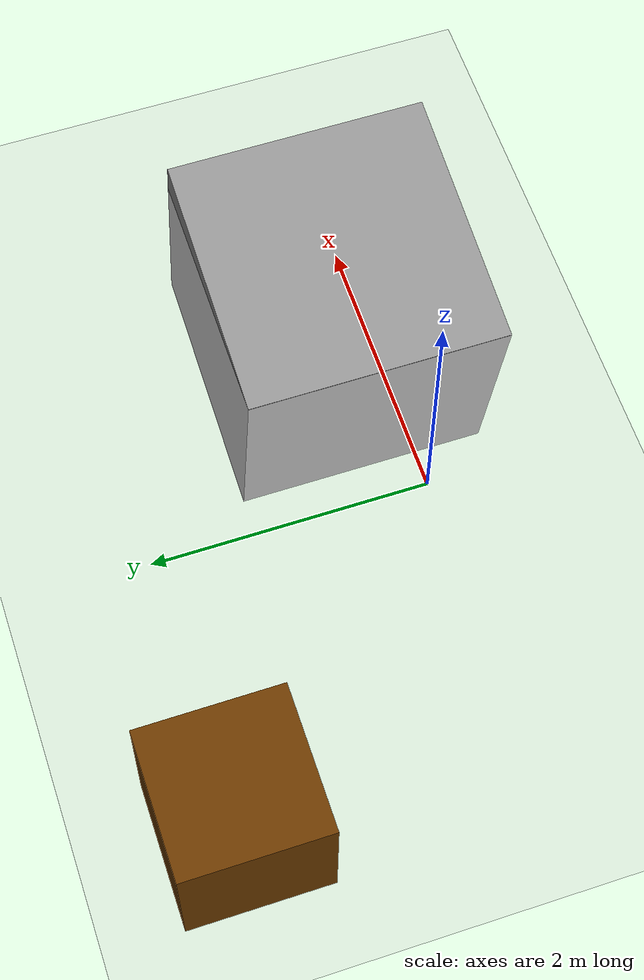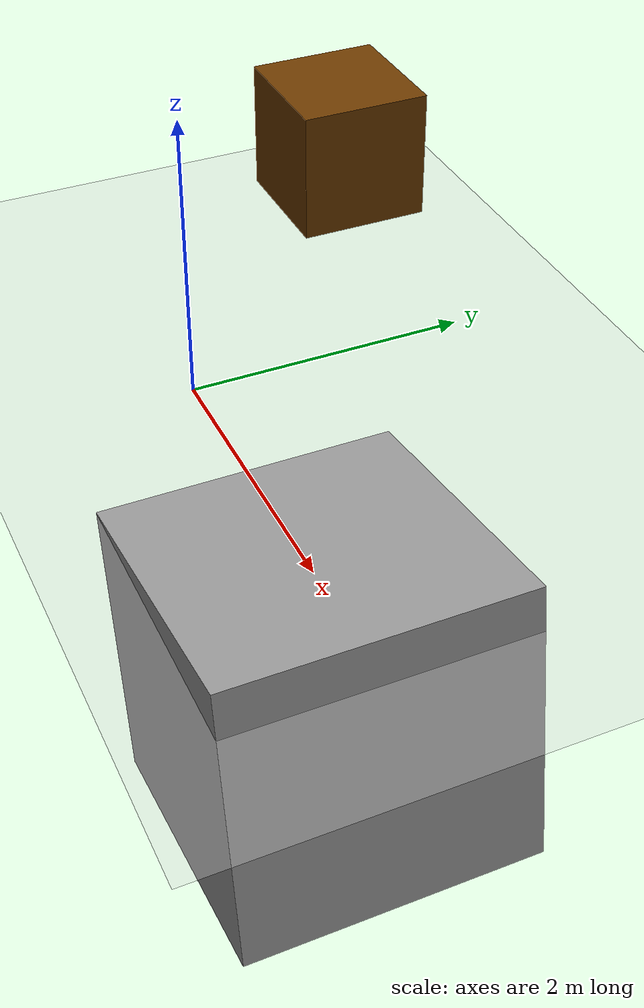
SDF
<sdf version="1.7">
 <world name="default">
  <physics type="ode">
   <max_step_size>0.0002</max_step_size>
   <real_time_factor>1</real_time_factor>
   <real_time_update_rate>5000</real_time_update_rate>
   <ode>
    <solver>
     <type>quick</type>
     <iters>50</iters>
     <sor>1.3</sor>
     <use_dynamic_moi_rescaling>0</use_dynamic_moi_rescaling>
    </solver>
    <constraints>
     <cfm>0</cfm>
     <erp>0.2</erp>
     <contact_max_correcting_vel>10</contact_max_correcting_vel>
     <contact_surface_layer>0.001</contact_surface_layer>
    </constraints>
   </ode>
  </physics>
  <scene>
   <sky><clouds><speed>12</speed></clouds></sky>
   <ambient>0.4 0.4 0.4 1</ambient>
   <background>0.7 0.7 0.7 1</background>
   <shadows>1</shadows>
  </scene>
  <light name="sun" type="directional">
   <pose>0 0 10 0 -0 0</pose>
   <diffuse>0.8 0.8 0.8 1</diffuse>
   <specular>0.2 0.2 0.2 1</specular>
   <attenuation>
    <range>1000</range>
    <constant>0.9</constant>
    <linear>0.01</linear>
    <quadratic>0.001</quadratic>
   </attenuation>
   <direction>-0.5 0.1 -0.9</direction>
   <spot><inner_angle>0</inner_angle><outer_angle>0</outer_angle><falloff>0</falloff></spot>
  </light>
  <model name="ground_plane">
   <static>1</static>
   <link name="link">
    <collision name="collision">
     <geometry><plane><normal>0 0 1</normal><size>100 100</size></plane></geometry>
     <surface>
      <contact><collide_bitmask>65535</collide_bitmask></contact>
      <friction><ode><mu>100</mu><mu2>50</mu2></ode></friction>
     </surface>
    </collision>
    <visual name="visual">
     <cast_shadows>0</cast_shadows>
     <geometry><plane><normal>0 0 1</normal><size>100 100</size></plane></geometry>
     <material>
      <script><uri>file://media/materials/scripts/gazebo.material</uri><name>Gazebo/Grey</name></script>
     </material>
    </visual>
   </link>
  </model>
  <model name="static_environment">
   <static>1</static>
   <link name="static_box">
    <pose>-2 2 0.5 0 -0 0</pose>
    <collision name="static_box_collision"><geometry><box><size>1 1 1</size></box></geometry></collision>
    <visual name="static_box_visual">
     <geometry><box><size>1 1 1</size></box></geometry>
     <material><ambient>0.2 0.2 0.2 1</ambient><diffuse>0.421 0.225 0 1</diffuse></material>
    </visual>
   </link>
  </model>
  <gravity>0 0 -9.81</gravity>
  <magnetic_field>6e-06 2.3e-05 -4.2e-05</magnetic_field>
  <atmosphere type="adiabatic"/>
  <spherical_coordinates>
   <surface_model>EARTH_WGS84</surface_model>
   <latitude_deg>0</latitude_deg>
   <longitude_deg>0</longitude_deg>
   <elevation>0</elevation>
   <heading_deg>0</heading_deg>
  </spherical_coordinates>
  <model name="unit_box">
   <link name="link">
    <inertial>
     <mass>1</mass>
     <inertia>
      <ixx>0.166667</ixx>
      <ixy>0</ixy>
      <ixz>0</ixz>
      <iyy>0.166667</iyy>
      <iyz>0</iyz>
      <izz>0.166667</izz>
     </inertia>
    </inertial>
    <visual name="visual">
     <geometry><box><size>2 2 2</size></box></geometry>
     <material>
      <script><name>Gazebo/Grey</name><uri>file://media/materials/scripts/gazebo.material</uri></script>
      <shader type="pixel"><normal_map>__default__</normal_map></shader>
      <ambient>0.3 0.3 0.3 1</ambient>
      <diffuse>0.7 0.7 0.7 1</diffuse>
      <specular>0.01 0.01 0.01 1</specular>
      <emissive>0 0 0 1</emissive>
     </material>
    </visual>
    <collision name="collision">
     <geometry><box><size>2 2 2</size></box></geometry>
     <surface>
      <friction>
       <ode><mu>1</mu><mu2>1</mu2><fdir1>0 0 0</fdir1><slip1>0</slip1><slip2>0</slip2></ode>
       <torsional>
        <coefficient>1</coefficient>
        <patch_radius>0</patch_radius>
        <surface_radius>0</surface_radius>
        <use_patch_radius>1</use_patch_radius>
        <ode><slip>0</slip></ode>
       </torsional>
      </friction>
      <bounce><restitution_coefficient>0</restitution_coefficient><threshold>1e+06</threshold></bounce>
      <contact>
       <collide_without_contact>0</collide_without_contact>
       <collide_without_contact_bitmask>1</collide_without_contact_bitmask>
       <collide_bitmask>1</collide_bitmask>
       <ode>
        <soft_cfm>0</soft_cfm>
        <soft_erp>0.2</soft_erp>
        <kp>1e+13</kp>
        <kd>1</kd>
        <max_vel>0.01</max_vel>
        <min_depth>0</min_depth>
       </ode>
       <bullet>
        <split_impulse>1</split_impulse>
        <split_impulse_penetration_threshold>-0.01</split_impulse_penetration_threshold>
        <soft_cfm>0</soft_cfm>
        <soft_erp>0.2</soft_erp>
        <kp>1e+13</kp>
        <kd>1</kd>
       </bullet>
      </contact>
     </surface>
    </collision>
   </link>
   <static>1</static>
   <pose>2.09215 0.004722 -0.84 0 -0.150001 0</pose>
  </model>
 </world>
</sdf>
